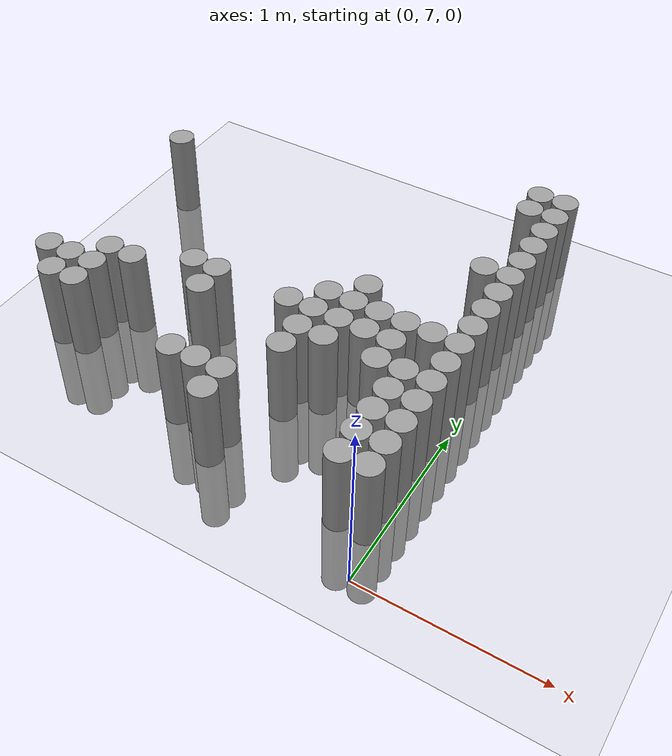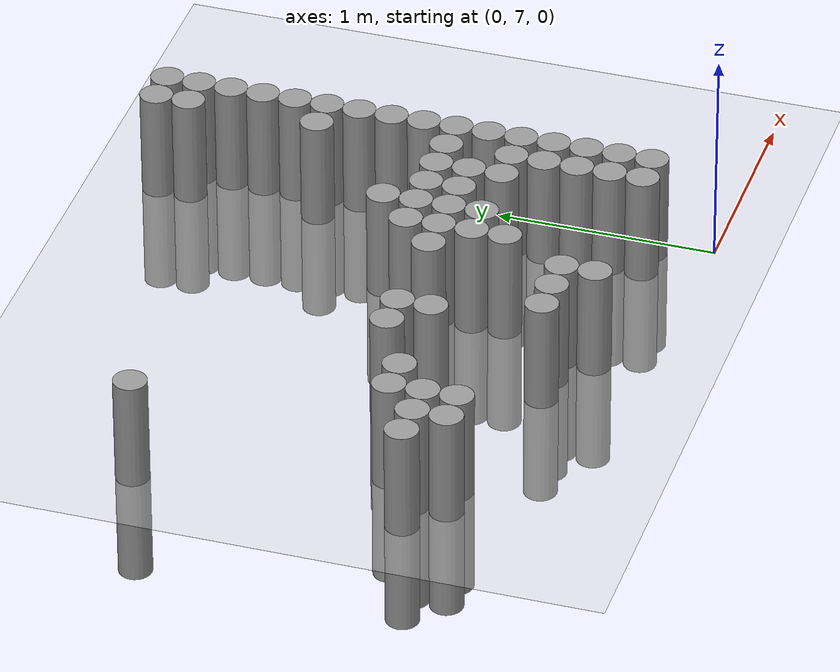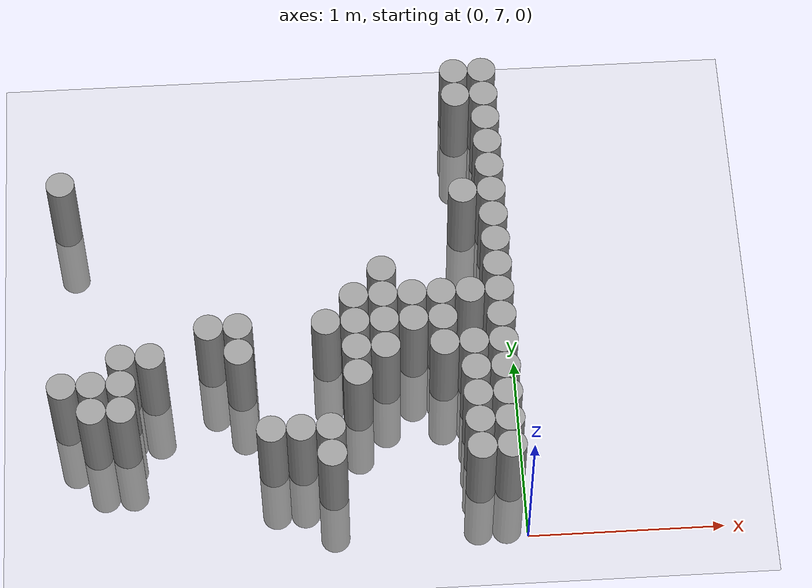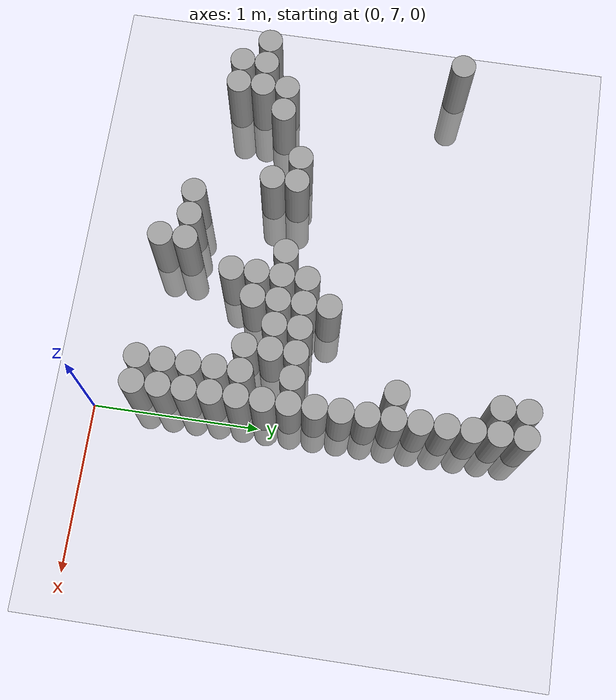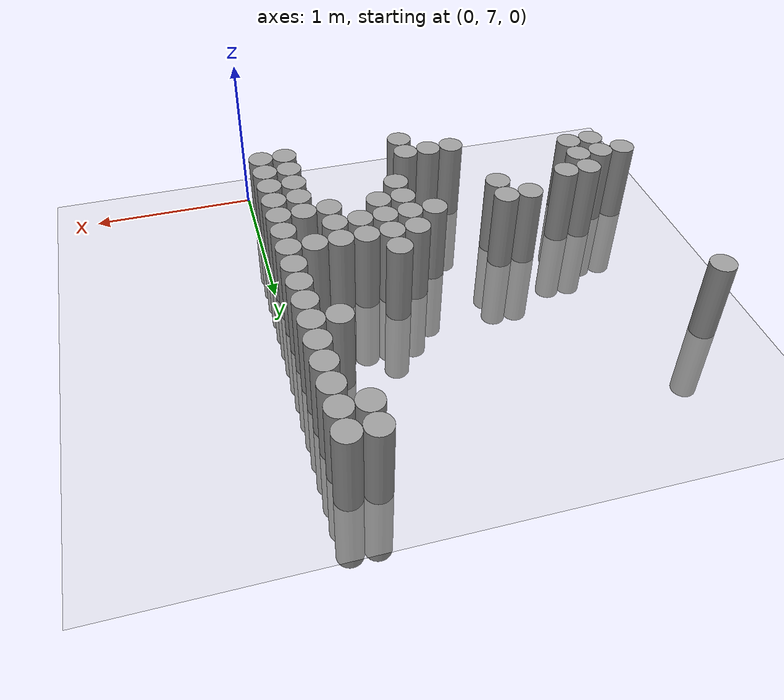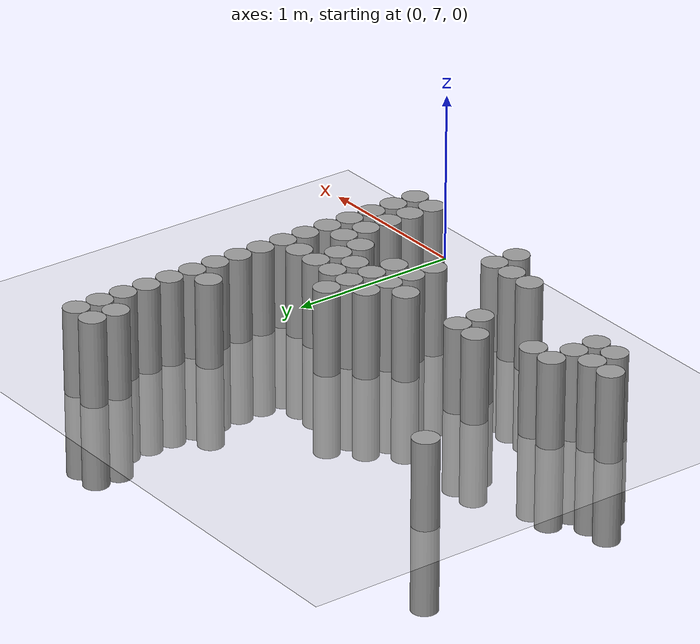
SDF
<sdf version="1.6">
 <world name="default">
  <model name="ground_plane">
   <static>1</static>
   <link name="link">
    <collision name="collision">
     <geometry><plane><normal>0 0 1</normal><size>100 100</size></plane></geometry>
     <surface><friction><ode><mu>100</mu><mu2>50</mu2></ode></friction></surface>
    </collision>
    <visual name="visual">
     <cast_shadows>0</cast_shadows>
     <geometry><plane><normal>0 0 1</normal><size>100 100</size></plane></geometry>
     <material>
      <script><uri>file://media/materials/scripts/gazebo.material</uri><name>Gazebo/Grey</name></script>
     </material>
    </visual>
   </link>
  </model>
  <model name="unit_cylinder_152">
   <pose>-2.325000 7.725000 0.000000 0.000000 0.000000 0.000000</pose>
   <link name="link">
    <inertial>
     <mass>1</mass>
     <inertia><ixx>0.145833</ixx><ixy>0</ixy><ixz>0</ixz><iyy>0.145833</iyy><iyz>0</iyz><izz>0.125</izz></inertia>
    </inertial>
    <collision name="collision">
     <geometry><cylinder><radius>0.075000</radius><length>1</length></cylinder></geometry>
    </collision>
    <visual name="visual">
     <geometry><cylinder><radius>0.075000</radius><length>1</length></cylinder></geometry>
     <material>
      <script><name>Gazebo/Grey</name><uri>file://media/materials/scripts/gazebo.material</uri></script>
     </material>
    </visual>
   </link>
  </model>
  <model name="unit_cylinder_153">
   <pose>-2.325000 8.925000 0.000000 0.000000 0.000000 0.000000</pose>
   <link name="link">
    <inertial>
     <mass>1</mass>
     <inertia><ixx>0.145833</ixx><ixy>0</ixy><ixz>0</ixz><iyy>0.145833</iyy><iyz>0</iyz><izz>0.125</izz></inertia>
    </inertial>
    <collision name="collision">
     <geometry><cylinder><radius>0.075000</radius><length>1</length></cylinder></geometry>
    </collision>
    <visual name="visual">
     <geometry><cylinder><radius>0.075000</radius><length>1</length></cylinder></geometry>
     <material>
      <script><name>Gazebo/Grey</name><uri>file://media/materials/scripts/gazebo.material</uri></script>
     </material>
    </visual>
   </link>
  </model>
  <model name="unit_cylinder_154">
   <pose>-2.175000 7.575000 0.000000 0.000000 0.000000 0.000000</pose>
   <link name="link">
    <inertial>
     <mass>1</mass>
     <inertia><ixx>0.145833</ixx><ixy>0</ixy><ixz>0</ixz><iyy>0.145833</iyy><iyz>0</iyz><izz>0.125</izz></inertia>
    </inertial>
    <collision name="collision">
     <geometry><cylinder><radius>0.075000</radius><length>1</length></cylinder></geometry>
    </collision>
    <visual name="visual">
     <geometry><cylinder><radius>0.075000</radius><length>1</length></cylinder></geometry>
     <material>
      <script><name>Gazebo/Grey</name><uri>file://media/materials/scripts/gazebo.material</uri></script>
     </material>
    </visual>
   </link>
  </model>
  <model name="unit_cylinder_155">
   <pose>-2.175000 7.725000 0.000000 0.000000 0.000000 0.000000</pose>
   <link name="link">
    <inertial>
     <mass>1</mass>
     <inertia><ixx>0.145833</ixx><ixy>0</ixy><ixz>0</ixz><iyy>0.145833</iyy><iyz>0</iyz><izz>0.125</izz></inertia>
    </inertial>
    <collision name="collision">
     <geometry><cylinder><radius>0.075000</radius><length>1</length></cylinder></geometry>
    </collision>
    <visual name="visual">
     <geometry><cylinder><radius>0.075000</radius><length>1</length></cylinder></geometry>
     <material>
      <script><name>Gazebo/Grey</name><uri>file://media/materials/scripts/gazebo.material</uri></script>
     </material>
    </visual>
   </link>
  </model>
  <model name="unit_cylinder_156">
   <pose>-2.025000 7.575000 0.000000 0.000000 0.000000 0.000000</pose>
   <link name="link">
    <inertial>
     <mass>1</mass>
     <inertia><ixx>0.145833</ixx><ixy>0</ixy><ixz>0</ixz><iyy>0.145833</iyy><iyz>0</iyz><izz>0.125</izz></inertia>
    </inertial>
    <collision name="collision">
     <geometry><cylinder><radius>0.075000</radius><length>1</length></cylinder></geometry>
    </collision>
    <visual name="visual">
     <geometry><cylinder><radius>0.075000</radius><length>1</length></cylinder></geometry>
     <material>
      <script><name>Gazebo/Grey</name><uri>file://media/materials/scripts/gazebo.material</uri></script>
     </material>
    </visual>
   </link>
  </model>
  <model name="unit_cylinder_157">
   <pose>-2.025000 7.725000 0.000000 0.000000 0.000000 0.000000</pose>
   <link name="link">
    <inertial>
     <mass>1</mass>
     <inertia><ixx>0.145833</ixx><ixy>0</ixy><ixz>0</ixz><iyy>0.145833</iyy><iyz>0</iyz><izz>0.125</izz></inertia>
    </inertial>
    <collision name="collision">
     <geometry><cylinder><radius>0.075000</radius><length>1</length></cylinder></geometry>
    </collision>
    <visual name="visual">
     <geometry><cylinder><radius>0.075000</radius><length>1</length></cylinder></geometry>
     <material>
      <script><name>Gazebo/Grey</name><uri>file://media/materials/scripts/gazebo.material</uri></script>
     </material>
    </visual>
   </link>
  </model>
  <model name="unit_cylinder_158">
   <pose>-2.025000 7.875000 0.000000 0.000000 0.000000 0.000000</pose>
   <link name="link">
    <inertial>
     <mass>1</mass>
     <inertia><ixx>0.145833</ixx><ixy>0</ixy><ixz>0</ixz><iyy>0.145833</iyy><iyz>0</iyz><izz>0.125</izz></inertia>
    </inertial>
    <collision name="collision">
     <geometry><cylinder><radius>0.075000</radius><length>1</length></cylinder></geometry>
    </collision>
    <visual name="visual">
     <geometry><cylinder><radius>0.075000</radius><length>1</length></cylinder></geometry>
     <material>
      <script><name>Gazebo/Grey</name><uri>file://media/materials/scripts/gazebo.material</uri></script>
     </material>
    </visual>
   </link>
  </model>
  <model name="unit_cylinder_161">
   <pose>-1.875000 7.875000 0.000000 0.000000 0.000000 0.000000</pose>
   <link name="link">
    <inertial>
     <mass>1</mass>
     <inertia><ixx>0.145833</ixx><ixy>0</ixy><ixz>0</ixz><iyy>0.145833</iyy><iyz>0</iyz><izz>0.125</izz></inertia>
    </inertial>
    <collision name="collision">
     <geometry><cylinder><radius>0.075000</radius><length>1</length></cylinder></geometry>
    </collision>
    <visual name="visual">
     <geometry><cylinder><radius>0.075000</radius><length>1</length></cylinder></geometry>
     <material>
      <script><name>Gazebo/Grey</name><uri>file://media/materials/scripts/gazebo.material</uri></script>
     </material>
    </visual>
   </link>
  </model>
  <model name="unit_cylinder_170">
   <pose>-1.575000 8.025000 0.000000 0.000000 0.000000 0.000000</pose>
   <link name="link">
    <inertial>
     <mass>1</mass>
     <inertia><ixx>0.145833</ixx><ixy>0</ixy><ixz>0</ixz><iyy>0.145833</iyy><iyz>0</iyz><izz>0.125</izz></inertia>
    </inertial>
    <collision name="collision">
     <geometry><cylinder><radius>0.075000</radius><length>1</length></cylinder></geometry>
    </collision>
    <visual name="visual">
     <geometry><cylinder><radius>0.075000</radius><length>1</length></cylinder></geometry>
     <material>
      <script><name>Gazebo/Grey</name><uri>file://media/materials/scripts/gazebo.material</uri></script>
     </material>
    </visual>
   </link>
  </model>
  <model name="unit_cylinder_175">
   <pose>-1.425000 7.875000 0.000000 0.000000 0.000000 0.000000</pose>
   <link name="link">
    <inertial>
     <mass>1</mass>
     <inertia><ixx>0.145833</ixx><ixy>0</ixy><ixz>0</ixz><iyy>0.145833</iyy><iyz>0</iyz><izz>0.125</izz></inertia>
    </inertial>
    <collision name="collision">
     <geometry><cylinder><radius>0.075000</radius><length>1</length></cylinder></geometry>
    </collision>
    <visual name="visual">
     <geometry><cylinder><radius>0.075000</radius><length>1</length></cylinder></geometry>
     <material>
      <script><name>Gazebo/Grey</name><uri>file://media/materials/scripts/gazebo.material</uri></script>
     </material>
    </visual>
   </link>
  </model>
  <model name="unit_cylinder_176">
   <pose>-1.425000 8.025000 0.000000 0.000000 0.000000 0.000000</pose>
   <link name="link">
    <inertial>
     <mass>1</mass>
     <inertia><ixx>0.145833</ixx><ixy>0</ixy><ixz>0</ixz><iyy>0.145833</iyy><iyz>0</iyz><izz>0.125</izz></inertia>
    </inertial>
    <collision name="collision">
     <geometry><cylinder><radius>0.075000</radius><length>1</length></cylinder></geometry>
    </collision>
    <visual name="visual">
     <geometry><cylinder><radius>0.075000</radius><length>1</length></cylinder></geometry>
     <material>
      <script><name>Gazebo/Grey</name><uri>file://media/materials/scripts/gazebo.material</uri></script>
     </material>
    </visual>
   </link>
  </model>
  <model name="unit_cylinder_183">
   <pose>-1.275000 7.425000 0.000000 0.000000 0.000000 0.000000</pose>
   <link name="link">
    <inertial>
     <mass>1</mass>
     <inertia><ixx>0.145833</ixx><ixy>0</ixy><ixz>0</ixz><iyy>0.145833</iyy><iyz>0</iyz><izz>0.125</izz></inertia>
    </inertial>
    <collision name="collision">
     <geometry><cylinder><radius>0.075000</radius><length>1</length></cylinder></geometry>
    </collision>
    <visual name="visual">
     <geometry><cylinder><radius>0.075000</radius><length>1</length></cylinder></geometry>
     <material>
      <script><name>Gazebo/Grey</name><uri>file://media/materials/scripts/gazebo.material</uri></script>
     </material>
    </visual>
   </link>
  </model>
  <model name="unit_cylinder_190">
   <pose>-1.125000 7.425000 0.000000 0.000000 0.000000 0.000000</pose>
   <link name="link">
    <inertial>
     <mass>1</mass>
     <inertia><ixx>0.145833</ixx><ixy>0</ixy><ixz>0</ixz><iyy>0.145833</iyy><iyz>0</iyz><izz>0.125</izz></inertia>
    </inertial>
    <collision name="collision">
     <geometry><cylinder><radius>0.075000</radius><length>1</length></cylinder></geometry>
    </collision>
    <visual name="visual">
     <geometry><cylinder><radius>0.075000</radius><length>1</length></cylinder></geometry>
     <material>
      <script><name>Gazebo/Grey</name><uri>file://media/materials/scripts/gazebo.material</uri></script>
     </material>
    </visual>
   </link>
  </model>
  <model name="unit_cylinder_196">
   <pose>-0.975000 7.275000 0.000000 0.000000 0.000000 0.000000</pose>
   <link name="link">
    <inertial>
     <mass>1</mass>
     <inertia><ixx>0.145833</ixx><ixy>0</ixy><ixz>0</ixz><iyy>0.145833</iyy><iyz>0</iyz><izz>0.125</izz></inertia>
    </inertial>
    <collision name="collision">
     <geometry><cylinder><radius>0.075000</radius><length>1</length></cylinder></geometry>
    </collision>
    <visual name="visual">
     <geometry><cylinder><radius>0.075000</radius><length>1</length></cylinder></geometry>
     <material>
      <script><name>Gazebo/Grey</name><uri>file://media/materials/scripts/gazebo.material</uri></script>
     </material>
    </visual>
   </link>
  </model>
  <model name="unit_cylinder_197">
   <pose>-0.975000 7.425000 0.000000 0.000000 0.000000 0.000000</pose>
   <link name="link">
    <inertial>
     <mass>1</mass>
     <inertia><ixx>0.145833</ixx><ixy>0</ixy><ixz>0</ixz><iyy>0.145833</iyy><iyz>0</iyz><izz>0.125</izz></inertia>
    </inertial>
    <collision name="collision">
     <geometry><cylinder><radius>0.075000</radius><length>1</length></cylinder></geometry>
    </collision>
    <visual name="visual">
     <geometry><cylinder><radius>0.075000</radius><length>1</length></cylinder></geometry>
     <material>
      <script><name>Gazebo/Grey</name><uri>file://media/materials/scripts/gazebo.material</uri></script>
     </material>
    </visual>
   </link>
  </model>
  <model name="unit_cylinder_198">
   <pose>-0.975000 8.025000 0.000000 0.000000 0.000000 0.000000</pose>
   <link name="link">
    <inertial>
     <mass>1</mass>
     <inertia><ixx>0.145833</ixx><ixy>0</ixy><ixz>0</ixz><iyy>0.145833</iyy><iyz>0</iyz><izz>0.125</izz></inertia>
    </inertial>
    <collision name="collision">
     <geometry><cylinder><radius>0.075000</radius><length>1</length></cylinder></geometry>
    </collision>
    <visual name="visual">
     <geometry><cylinder><radius>0.075000</radius><length>1</length></cylinder></geometry>
     <material>
      <script><name>Gazebo/Grey</name><uri>file://media/materials/scripts/gazebo.material</uri></script>
     </material>
    </visual>
   </link>
  </model>
  <model name="unit_cylinder_202">
   <pose>-0.825000 7.725000 0.000000 0.000000 0.000000 0.000000</pose>
   <link name="link">
    <inertial>
     <mass>1</mass>
     <inertia><ixx>0.145833</ixx><ixy>0</ixy><ixz>0</ixz><iyy>0.145833</iyy><iyz>0</iyz><izz>0.125</izz></inertia>
    </inertial>
    <collision name="collision">
     <geometry><cylinder><radius>0.075000</radius><length>1</length></cylinder></geometry>
    </collision>
    <visual name="visual">
     <geometry><cylinder><radius>0.075000</radius><length>1</length></cylinder></geometry>
     <material>
      <script><name>Gazebo/Grey</name><uri>file://media/materials/scripts/gazebo.material</uri></script>
     </material>
    </visual>
   </link>
  </model>
  <model name="unit_cylinder_203">
   <pose>-0.825000 7.875000 0.000000 0.000000 0.000000 0.000000</pose>
   <link name="link">
    <inertial>
     <mass>1</mass>
     <inertia><ixx>0.145833</ixx><ixy>0</ixy><ixz>0</ixz><iyy>0.145833</iyy><iyz>0</iyz><izz>0.125</izz></inertia>
    </inertial>
    <collision name="collision">
     <geometry><cylinder><radius>0.075000</radius><length>1</length></cylinder></geometry>
    </collision>
    <visual name="visual">
     <geometry><cylinder><radius>0.075000</radius><length>1</length></cylinder></geometry>
     <material>
      <script><name>Gazebo/Grey</name><uri>file://media/materials/scripts/gazebo.material</uri></script>
     </material>
    </visual>
   </link>
  </model>
  <model name="unit_cylinder_204">
   <pose>-0.825000 8.025000 0.000000 0.000000 0.000000 0.000000</pose>
   <link name="link">
    <inertial>
     <mass>1</mass>
     <inertia><ixx>0.145833</ixx><ixy>0</ixy><ixz>0</ixz><iyy>0.145833</iyy><iyz>0</iyz><izz>0.125</izz></inertia>
    </inertial>
    <collision name="collision">
     <geometry><cylinder><radius>0.075000</radius><length>1</length></cylinder></geometry>
    </collision>
    <visual name="visual">
     <geometry><cylinder><radius>0.075000</radius><length>1</length></cylinder></geometry>
     <material>
      <script><name>Gazebo/Grey</name><uri>file://media/materials/scripts/gazebo.material</uri></script>
     </material>
    </visual>
   </link>
  </model>
  <model name="unit_cylinder_205">
   <pose>-0.825000 8.175000 0.000000 0.000000 0.000000 0.000000</pose>
   <link name="link">
    <inertial>
     <mass>1</mass>
     <inertia><ixx>0.145833</ixx><ixy>0</ixy><ixz>0</ixz><iyy>0.145833</iyy><iyz>0</iyz><izz>0.125</izz></inertia>
    </inertial>
    <collision name="collision">
     <geometry><cylinder><radius>0.075000</radius><length>1</length></cylinder></geometry>
    </collision>
    <visual name="visual">
     <geometry><cylinder><radius>0.075000</radius><length>1</length></cylinder></geometry>
     <material>
      <script><name>Gazebo/Grey</name><uri>file://media/materials/scripts/gazebo.material</uri></script>
     </material>
    </visual>
   </link>
  </model>
  <model name="unit_cylinder_209">
   <pose>-0.675000 7.875000 0.000000 0.000000 0.000000 0.000000</pose>
   <link name="link">
    <inertial>
     <mass>1</mass>
     <inertia><ixx>0.145833</ixx><ixy>0</ixy><ixz>0</ixz><iyy>0.145833</iyy><iyz>0</iyz><izz>0.125</izz></inertia>
    </inertial>
    <collision name="collision">
     <geometry><cylinder><radius>0.075000</radius><length>1</length></cylinder></geometry>
    </collision>
    <visual name="visual">
     <geometry><cylinder><radius>0.075000</radius><length>1</length></cylinder></geometry>
     <material>
      <script><name>Gazebo/Grey</name><uri>file://media/materials/scripts/gazebo.material</uri></script>
     </material>
    </visual>
   </link>
  </model>
  <model name="unit_cylinder_210">
   <pose>-0.675000 8.025000 0.000000 0.000000 0.000000 0.000000</pose>
   <link name="link">
    <inertial>
     <mass>1</mass>
     <inertia><ixx>0.145833</ixx><ixy>0</ixy><ixz>0</ixz><iyy>0.145833</iyy><iyz>0</iyz><izz>0.125</izz></inertia>
    </inertial>
    <collision name="collision">
     <geometry><cylinder><radius>0.075000</radius><length>1</length></cylinder></geometry>
    </collision>
    <visual name="visual">
     <geometry><cylinder><radius>0.075000</radius><length>1</length></cylinder></geometry>
     <material>
      <script><name>Gazebo/Grey</name><uri>file://media/materials/scripts/gazebo.material</uri></script>
     </material>
    </visual>
   </link>
  </model>
  <model name="unit_cylinder_211">
   <pose>-0.675000 8.175000 0.000000 0.000000 0.000000 0.000000</pose>
   <link name="link">
    <inertial>
     <mass>1</mass>
     <inertia><ixx>0.145833</ixx><ixy>0</ixy><ixz>0</ixz><iyy>0.145833</iyy><iyz>0</iyz><izz>0.125</izz></inertia>
    </inertial>
    <collision name="collision">
     <geometry><cylinder><radius>0.075000</radius><length>1</length></cylinder></geometry>
    </collision>
    <visual name="visual">
     <geometry><cylinder><radius>0.075000</radius><length>1</length></cylinder></geometry>
     <material>
      <script><name>Gazebo/Grey</name><uri>file://media/materials/scripts/gazebo.material</uri></script>
     </material>
    </visual>
   </link>
  </model>
  <model name="unit_cylinder_212">
   <pose>-0.675000 8.325000 0.000000 0.000000 0.000000 0.000000</pose>
   <link name="link">
    <inertial>
     <mass>1</mass>
     <inertia><ixx>0.145833</ixx><ixy>0</ixy><ixz>0</ixz><iyy>0.145833</iyy><iyz>0</iyz><izz>0.125</izz></inertia>
    </inertial>
    <collision name="collision">
     <geometry><cylinder><radius>0.075000</radius><length>1</length></cylinder></geometry>
    </collision>
    <visual name="visual">
     <geometry><cylinder><radius>0.075000</radius><length>1</length></cylinder></geometry>
     <material>
      <script><name>Gazebo/Grey</name><uri>file://media/materials/scripts/gazebo.material</uri></script>
     </material>
    </visual>
   </link>
  </model>
  <model name="unit_cylinder_215">
   <pose>-0.525000 8.025000 0.000000 0.000000 0.000000 0.000000</pose>
   <link name="link">
    <inertial>
     <mass>1</mass>
     <inertia><ixx>0.145833</ixx><ixy>0</ixy><ixz>0</ixz><iyy>0.145833</iyy><iyz>0</iyz><izz>0.125</izz></inertia>
    </inertial>
    <collision name="collision">
     <geometry><cylinder><radius>0.075000</radius><length>1</length></cylinder></geometry>
    </collision>
    <visual name="visual">
     <geometry><cylinder><radius>0.075000</radius><length>1</length></cylinder></geometry>
     <material>
      <script><name>Gazebo/Grey</name><uri>file://media/materials/scripts/gazebo.material</uri></script>
     </material>
    </visual>
   </link>
  </model>
  <model name="unit_cylinder_216">
   <pose>-0.525000 8.175000 0.000000 0.000000 0.000000 0.000000</pose>
   <link name="link">
    <inertial>
     <mass>1</mass>
     <inertia><ixx>0.145833</ixx><ixy>0</ixy><ixz>0</ixz><iyy>0.145833</iyy><iyz>0</iyz><izz>0.125</izz></inertia>
    </inertial>
    <collision name="collision">
     <geometry><cylinder><radius>0.075000</radius><length>1</length></cylinder></geometry>
    </collision>
    <visual name="visual">
     <geometry><cylinder><radius>0.075000</radius><length>1</length></cylinder></geometry>
     <material>
      <script><name>Gazebo/Grey</name><uri>file://media/materials/scripts/gazebo.material</uri></script>
     </material>
    </visual>
   </link>
  </model>
  <model name="unit_cylinder_220">
   <pose>-0.375000 7.875000 0.000000 0.000000 0.000000 0.000000</pose>
   <link name="link">
    <inertial>
     <mass>1</mass>
     <inertia><ixx>0.145833</ixx><ixy>0</ixy><ixz>0</ixz><iyy>0.145833</iyy><iyz>0</iyz><izz>0.125</izz></inertia>
    </inertial>
    <collision name="collision">
     <geometry><cylinder><radius>0.075000</radius><length>1</length></cylinder></geometry>
    </collision>
    <visual name="visual">
     <geometry><cylinder><radius>0.075000</radius><length>1</length></cylinder></geometry>
     <material>
      <script><name>Gazebo/Grey</name><uri>file://media/materials/scripts/gazebo.material</uri></script>
     </material>
    </visual>
   </link>
  </model>
  <model name="unit_cylinder_221">
   <pose>-0.375000 8.025000 0.000000 0.000000 0.000000 0.000000</pose>
   <link name="link">
    <inertial>
     <mass>1</mass>
     <inertia><ixx>0.145833</ixx><ixy>0</ixy><ixz>0</ixz><iyy>0.145833</iyy><iyz>0</iyz><izz>0.125</izz></inertia>
    </inertial>
    <collision name="collision">
     <geometry><cylinder><radius>0.075000</radius><length>1</length></cylinder></geometry>
    </collision>
    <visual name="visual">
     <geometry><cylinder><radius>0.075000</radius><length>1</length></cylinder></geometry>
     <material>
      <script><name>Gazebo/Grey</name><uri>file://media/materials/scripts/gazebo.material</uri></script>
     </material>
    </visual>
   </link>
  </model>
  <model name="unit_cylinder_222">
   <pose>-0.375000 8.175000 0.000000 0.000000 0.000000 0.000000</pose>
   <link name="link">
    <inertial>
     <mass>1</mass>
     <inertia><ixx>0.145833</ixx><ixy>0</ixy><ixz>0</ixz><iyy>0.145833</iyy><iyz>0</iyz><izz>0.125</izz></inertia>
    </inertial>
    <collision name="collision">
     <geometry><cylinder><radius>0.075000</radius><length>1</length></cylinder></geometry>
    </collision>
    <visual name="visual">
     <geometry><cylinder><radius>0.075000</radius><length>1</length></cylinder></geometry>
     <material>
      <script><name>Gazebo/Grey</name><uri>file://media/materials/scripts/gazebo.material</uri></script>
     </material>
    </visual>
   </link>
  </model>
  <model name="unit_cylinder_230">
   <pose>-0.225000 7.275000 0.000000 0.000000 0.000000 0.000000</pose>
   <link name="link">
    <inertial>
     <mass>1</mass>
     <inertia><ixx>0.145833</ixx><ixy>0</ixy><ixz>0</ixz><iyy>0.145833</iyy><iyz>0</iyz><izz>0.125</izz></inertia>
    </inertial>
    <collision name="collision">
     <geometry><cylinder><radius>0.075000</radius><length>1</length></cylinder></geometry>
    </collision>
    <visual name="visual">
     <geometry><cylinder><radius>0.075000</radius><length>1</length></cylinder></geometry>
     <material>
      <script><name>Gazebo/Grey</name><uri>file://media/materials/scripts/gazebo.material</uri></script>
     </material>
    </visual>
   </link>
  </model>
  <model name="unit_cylinder_231">
   <pose>-0.225000 7.425000 0.000000 0.000000 0.000000 0.000000</pose>
   <link name="link">
    <inertial>
     <mass>1</mass>
     <inertia><ixx>0.145833</ixx><ixy>0</ixy><ixz>0</ixz><iyy>0.145833</iyy><iyz>0</iyz><izz>0.125</izz></inertia>
    </inertial>
    <collision name="collision">
     <geometry><cylinder><radius>0.075000</radius><length>1</length></cylinder></geometry>
    </collision>
    <visual name="visual">
     <geometry><cylinder><radius>0.075000</radius><length>1</length></cylinder></geometry>
     <material>
      <script><name>Gazebo/Grey</name><uri>file://media/materials/scripts/gazebo.material</uri></script>
     </material>
    </visual>
   </link>
  </model>
  <model name="unit_cylinder_232">
   <pose>-0.225000 7.575000 0.000000 0.000000 0.000000 0.000000</pose>
   <link name="link">
    <inertial>
     <mass>1</mass>
     <inertia><ixx>0.145833</ixx><ixy>0</ixy><ixz>0</ixz><iyy>0.145833</iyy><iyz>0</iyz><izz>0.125</izz></inertia>
    </inertial>
    <collision name="collision">
     <geometry><cylinder><radius>0.075000</radius><length>1</length></cylinder></geometry>
    </collision>
    <visual name="visual">
     <geometry><cylinder><radius>0.075000</radius><length>1</length></cylinder></geometry>
     <material>
      <script><name>Gazebo/Grey</name><uri>file://media/materials/scripts/gazebo.material</uri></script>
     </material>
    </visual>
   </link>
  </model>
  <model name="unit_cylinder_233">
   <pose>-0.225000 7.725000 0.000000 0.000000 0.000000 0.000000</pose>
   <link name="link">
    <inertial>
     <mass>1</mass>
     <inertia><ixx>0.145833</ixx><ixy>0</ixy><ixz>0</ixz><iyy>0.145833</iyy><iyz>0</iyz><izz>0.125</izz></inertia>
    </inertial>
    <collision name="collision">
     <geometry><cylinder><radius>0.075000</radius><length>1</length></cylinder></geometry>
    </collision>
    <visual name="visual">
     <geometry><cylinder><radius>0.075000</radius><length>1</length></cylinder></geometry>
     <material>
      <script><name>Gazebo/Grey</name><uri>file://media/materials/scripts/gazebo.material</uri></script>
     </material>
    </visual>
   </link>
  </model>
  <model name="unit_cylinder_234">
   <pose>-0.225000 7.875000 0.000000 0.000000 0.000000 0.000000</pose>
   <link name="link">
    <inertial>
     <mass>1</mass>
     <inertia><ixx>0.145833</ixx><ixy>0</ixy><ixz>0</ixz><iyy>0.145833</iyy><iyz>0</iyz><izz>0.125</izz></inertia>
    </inertial>
    <collision name="collision">
     <geometry><cylinder><radius>0.075000</radius><length>1</length></cylinder></geometry>
    </collision>
    <visual name="visual">
     <geometry><cylinder><radius>0.075000</radius><length>1</length></cylinder></geometry>
     <material>
      <script><name>Gazebo/Grey</name><uri>file://media/materials/scripts/gazebo.material</uri></script>
     </material>
    </visual>
   </link>
  </model>
  <model name="unit_cylinder_235">
   <pose>-0.225000 8.175000 0.000000 0.000000 0.000000 0.000000</pose>
   <link name="link">
    <inertial>
     <mass>1</mass>
     <inertia><ixx>0.145833</ixx><ixy>0</ixy><ixz>0</ixz><iyy>0.145833</iyy><iyz>0</iyz><izz>0.125</izz></inertia>
    </inertial>
    <collision name="collision">
     <geometry><cylinder><radius>0.075000</radius><length>1</length></cylinder></geometry>
    </collision>
    <visual name="visual">
     <geometry><cylinder><radius>0.075000</radius><length>1</length></cylinder></geometry>
     <material>
      <script><name>Gazebo/Grey</name><uri>file://media/materials/scripts/gazebo.material</uri></script>
     </material>
    </visual>
   </link>
  </model>
  <model name="unit_cylinder_236">
   <pose>-0.225000 8.775000 0.000000 0.000000 0.000000 0.000000</pose>
   <link name="link">
    <inertial>
     <mass>1</mass>
     <inertia><ixx>0.145833</ixx><ixy>0</ixy><ixz>0</ixz><iyy>0.145833</iyy><iyz>0</iyz><izz>0.125</izz></inertia>
    </inertial>
    <collision name="collision">
     <geometry><cylinder><radius>0.075000</radius><length>1</length></cylinder></geometry>
    </collision>
    <visual name="visual">
     <geometry><cylinder><radius>0.075000</radius><length>1</length></cylinder></geometry>
     <material>
      <script><name>Gazebo/Grey</name><uri>file://media/materials/scripts/gazebo.material</uri></script>
     </material>
    </visual>
   </link>
  </model>
  <model name="unit_cylinder_237">
   <pose>-0.225000 9.375000 0.000000 0.000000 0.000000 0.000000</pose>
   <link name="link">
    <inertial>
     <mass>1</mass>
     <inertia><ixx>0.145833</ixx><ixy>0</ixy><ixz>0</ixz><iyy>0.145833</iyy><iyz>0</iyz><izz>0.125</izz></inertia>
    </inertial>
    <collision name="collision">
     <geometry><cylinder><radius>0.075000</radius><length>1</length></cylinder></geometry>
    </collision>
    <visual name="visual">
     <geometry><cylinder><radius>0.075000</radius><length>1</length></cylinder></geometry>
     <material>
      <script><name>Gazebo/Grey</name><uri>file://media/materials/scripts/gazebo.material</uri></script>
     </material>
    </visual>
   </link>
  </model>
  <model name="unit_cylinder_238">
   <pose>-0.225000 9.525000 0.000000 0.000000 0.000000 0.000000</pose>
   <link name="link">
    <inertial>
     <mass>1</mass>
     <inertia><ixx>0.145833</ixx><ixy>0</ixy><ixz>0</ixz><iyy>0.145833</iyy><iyz>0</iyz><izz>0.125</izz></inertia>
    </inertial>
    <collision name="collision">
     <geometry><cylinder><radius>0.075000</radius><length>1</length></cylinder></geometry>
    </collision>
    <visual name="visual">
     <geometry><cylinder><radius>0.075000</radius><length>1</length></cylinder></geometry>
     <material>
      <script><name>Gazebo/Grey</name><uri>file://media/materials/scripts/gazebo.material</uri></script>
     </material>
    </visual>
   </link>
  </model>
  <model name="unit_cylinder_253">
   <pose>-0.075000 7.275000 0.000000 0.000000 0.000000 0.000000</pose>
   <link name="link">
    <inertial>
     <mass>1</mass>
     <inertia><ixx>0.145833</ixx><ixy>0</ixy><ixz>0</ixz><iyy>0.145833</iyy><iyz>0</iyz><izz>0.125</izz></inertia>
    </inertial>
    <collision name="collision">
     <geometry><cylinder><radius>0.075000</radius><length>1</length></cylinder></geometry>
    </collision>
    <visual name="visual">
     <geometry><cylinder><radius>0.075000</radius><length>1</length></cylinder></geometry>
     <material>
      <script><name>Gazebo/Grey</name><uri>file://media/materials/scripts/gazebo.material</uri></script>
     </material>
    </visual>
   </link>
  </model>
  <model name="unit_cylinder_254">
   <pose>-0.075000 7.425000 0.000000 0.000000 0.000000 0.000000</pose>
   <link name="link">
    <inertial>
     <mass>1</mass>
     <inertia><ixx>0.145833</ixx><ixy>0</ixy><ixz>0</ixz><iyy>0.145833</iyy><iyz>0</iyz><izz>0.125</izz></inertia>
    </inertial>
    <collision name="collision">
     <geometry><cylinder><radius>0.075000</radius><length>1</length></cylinder></geometry>
    </collision>
    <visual name="visual">
     <geometry><cylinder><radius>0.075000</radius><length>1</length></cylinder></geometry>
     <material>
      <script><name>Gazebo/Grey</name><uri>file://media/materials/scripts/gazebo.material</uri></script>
     </material>
    </visual>
   </link>
  </model>
  <model name="unit_cylinder_255">
   <pose>-0.075000 7.575000 0.000000 0.000000 0.000000 0.000000</pose>
   <link name="link">
    <inertial>
     <mass>1</mass>
     <inertia><ixx>0.145833</ixx><ixy>0</ixy><ixz>0</ixz><iyy>0.145833</iyy><iyz>0</iyz><izz>0.125</izz></inertia>
    </inertial>
    <collision name="collision">
     <geometry><cylinder><radius>0.075000</radius><length>1</length></cylinder></geometry>
    </collision>
    <visual name="visual">
     <geometry><cylinder><radius>0.075000</radius><length>1</length></cylinder></geometry>
     <material>
      <script><name>Gazebo/Grey</name><uri>file://media/materials/scripts/gazebo.material</uri></script>
     </material>
    </visual>
   </link>
  </model>
  <model name="unit_cylinder_256">
   <pose>-0.075000 7.725000 0.000000 0.000000 0.000000 0.000000</pose>
   <link name="link">
    <inertial>
     <mass>1</mass>
     <inertia><ixx>0.145833</ixx><ixy>0</ixy><ixz>0</ixz><iyy>0.145833</iyy><iyz>0</iyz><izz>0.125</izz></inertia>
    </inertial>
    <collision name="collision">
     <geometry><cylinder><radius>0.075000</radius><length>1</length></cylinder></geometry>
    </collision>
    <visual name="visual">
     <geometry><cylinder><radius>0.075000</radius><length>1</length></cylinder></geometry>
     <material>
      <script><name>Gazebo/Grey</name><uri>file://media/materials/scripts/gazebo.material</uri></script>
     </material>
    </visual>
   </link>
  </model>
  <model name="unit_cylinder_257">
   <pose>-0.075000 7.875000 0.000000 0.000000 0.000000 0.000000</pose>
   <link name="link">
    <inertial>
     <mass>1</mass>
     <inertia><ixx>0.145833</ixx><ixy>0</ixy><ixz>0</ixz><iyy>0.145833</iyy><iyz>0</iyz><izz>0.125</izz></inertia>
    </inertial>
    <collision name="collision">
     <geometry><cylinder><radius>0.075000</radius><length>1</length></cylinder></geometry>
    </collision>
    <visual name="visual">
     <geometry><cylinder><radius>0.075000</radius><length>1</length></cylinder></geometry>
     <material>
      <script><name>Gazebo/Grey</name><uri>file://media/materials/scripts/gazebo.material</uri></script>
     </material>
    </visual>
   </link>
  </model>
  <model name="unit_cylinder_258">
   <pose>-0.075000 8.025000 0.000000 0.000000 0.000000 0.000000</pose>
   <link name="link">
    <inertial>
     <mass>1</mass>
     <inertia><ixx>0.145833</ixx><ixy>0</ixy><ixz>0</ixz><iyy>0.145833</iyy><iyz>0</iyz><izz>0.125</izz></inertia>
    </inertial>
    <collision name="collision">
     <geometry><cylinder><radius>0.075000</radius><length>1</length></cylinder></geometry>
    </collision>
    <visual name="visual">
     <geometry><cylinder><radius>0.075000</radius><length>1</length></cylinder></geometry>
     <material>
      <script><name>Gazebo/Grey</name><uri>file://media/materials/scripts/gazebo.material</uri></script>
     </material>
    </visual>
   </link>
  </model>
  <model name="unit_cylinder_259">
   <pose>-0.075000 8.175000 0.000000 0.000000 0.000000 0.000000</pose>
   <link name="link">
    <inertial>
     <mass>1</mass>
     <inertia><ixx>0.145833</ixx><ixy>0</ixy><ixz>0</ixz><iyy>0.145833</iyy><iyz>0</iyz><izz>0.125</izz></inertia>
    </inertial>
    <collision name="collision">
     <geometry><cylinder><radius>0.075000</radius><length>1</length></cylinder></geometry>
    </collision>
    <visual name="visual">
     <geometry><cylinder><radius>0.075000</radius><length>1</length></cylinder></geometry>
     <material>
      <script><name>Gazebo/Grey</name><uri>file://media/materials/scripts/gazebo.material</uri></script>
     </material>
    </visual>
   </link>
  </model>
  <model name="unit_cylinder_260">
   <pose>-0.075000 8.325000 0.000000 0.000000 0.000000 0.000000</pose>
   <link name="link">
    <inertial>
     <mass>1</mass>
     <inertia><ixx>0.145833</ixx><ixy>0</ixy><ixz>0</ixz><iyy>0.145833</iyy><iyz>0</iyz><izz>0.125</izz></inertia>
    </inertial>
    <collision name="collision">
     <geometry><cylinder><radius>0.075000</radius><length>1</length></cylinder></geometry>
    </collision>
    <visual name="visual">
     <geometry><cylinder><radius>0.075000</radius><length>1</length></cylinder></geometry>
     <material>
      <script><name>Gazebo/Grey</name><uri>file://media/materials/scripts/gazebo.material</uri></script>
     </material>
    </visual>
   </link>
  </model>
  <model name="unit_cylinder_261">
   <pose>-0.075000 8.475000 0.000000 0.000000 0.000000 0.000000</pose>
   <link name="link">
    <inertial>
     <mass>1</mass>
     <inertia><ixx>0.145833</ixx><ixy>0</ixy><ixz>0</ixz><iyy>0.145833</iyy><iyz>0</iyz><izz>0.125</izz></inertia>
    </inertial>
    <collision name="collision">
     <geometry><cylinder><radius>0.075000</radius><length>1</length></cylinder></geometry>
    </collision>
    <visual name="visual">
     <geometry><cylinder><radius>0.075000</radius><length>1</length></cylinder></geometry>
     <material>
      <script><name>Gazebo/Grey</name><uri>file://media/materials/scripts/gazebo.material</uri></script>
     </material>
    </visual>
   </link>
  </model>
  <model name="unit_cylinder_262">
   <pose>-0.075000 8.625000 0.000000 0.000000 0.000000 0.000000</pose>
   <link name="link">
    <inertial>
     <mass>1</mass>
     <inertia><ixx>0.145833</ixx><ixy>0</ixy><ixz>0</ixz><iyy>0.145833</iyy><iyz>0</iyz><izz>0.125</izz></inertia>
    </inertial>
    <collision name="collision">
     <geometry><cylinder><radius>0.075000</radius><length>1</length></cylinder></geometry>
    </collision>
    <visual name="visual">
     <geometry><cylinder><radius>0.075000</radius><length>1</length></cylinder></geometry>
     <material>
      <script><name>Gazebo/Grey</name><uri>file://media/materials/scripts/gazebo.material</uri></script>
     </material>
    </visual>
   </link>
  </model>
  <model name="unit_cylinder_263">
   <pose>-0.075000 8.775000 0.000000 0.000000 0.000000 0.000000</pose>
   <link name="link">
    <inertial>
     <mass>1</mass>
     <inertia><ixx>0.145833</ixx><ixy>0</ixy><ixz>0</ixz><iyy>0.145833</iyy><iyz>0</iyz><izz>0.125</izz></inertia>
    </inertial>
    <collision name="collision">
     <geometry><cylinder><radius>0.075000</radius><length>1</length></cylinder></geometry>
    </collision>
    <visual name="visual">
     <geometry><cylinder><radius>0.075000</radius><length>1</length></cylinder></geometry>
     <material>
      <script><name>Gazebo/Grey</name><uri>file://media/materials/scripts/gazebo.material</uri></script>
     </material>
    </visual>
   </link>
  </model>
  <model name="unit_cylinder_264">
   <pose>-0.075000 8.925000 0.000000 0.000000 0.000000 0.000000</pose>
   <link name="link">
    <inertial>
     <mass>1</mass>
     <inertia><ixx>0.145833</ixx><ixy>0</ixy><ixz>0</ixz><iyy>0.145833</iyy><iyz>0</iyz><izz>0.125</izz></inertia>
    </inertial>
    <collision name="collision">
     <geometry><cylinder><radius>0.075000</radius><length>1</length></cylinder></geometry>
    </collision>
    <visual name="visual">
     <geometry><cylinder><radius>0.075000</radius><length>1</length></cylinder></geometry>
     <material>
      <script><name>Gazebo/Grey</name><uri>file://media/materials/scripts/gazebo.material</uri></script>
     </material>
    </visual>
   </link>
  </model>
  <model name="unit_cylinder_265">
   <pose>-0.075000 9.075000 0.000000 0.000000 0.000000 0.000000</pose>
   <link name="link">
    <inertial>
     <mass>1</mass>
     <inertia><ixx>0.145833</ixx><ixy>0</ixy><ixz>0</ixz><iyy>0.145833</iyy><iyz>0</iyz><izz>0.125</izz></inertia>
    </inertial>
    <collision name="collision">
     <geometry><cylinder><radius>0.075000</radius><length>1</length></cylinder></geometry>
    </collision>
    <visual name="visual">
     <geometry><cylinder><radius>0.075000</radius><length>1</length></cylinder></geometry>
     <material>
      <script><name>Gazebo/Grey</name><uri>file://media/materials/scripts/gazebo.material</uri></script>
     </material>
    </visual>
   </link>
  </model>
  <model name="unit_cylinder_266">
   <pose>-0.075000 9.225000 0.000000 0.000000 0.000000 0.000000</pose>
   <link name="link">
    <inertial>
     <mass>1</mass>
     <inertia><ixx>0.145833</ixx><ixy>0</ixy><ixz>0</ixz><iyy>0.145833</iyy><iyz>0</iyz><izz>0.125</izz></inertia>
    </inertial>
    <collision name="collision">
     <geometry><cylinder><radius>0.075000</radius><length>1</length></cylinder></geometry>
    </collision>
    <visual name="visual">
     <geometry><cylinder><radius>0.075000</radius><length>1</length></cylinder></geometry>
     <material>
      <script><name>Gazebo/Grey</name><uri>file://media/materials/scripts/gazebo.material</uri></script>
     </material>
    </visual>
   </link>
  </model>
  <model name="unit_cylinder_267">
   <pose>-0.075000 9.375000 0.000000 0.000000 0.000000 0.000000</pose>
   <link name="link">
    <inertial>
     <mass>1</mass>
     <inertia><ixx>0.145833</ixx><ixy>0</ixy><ixz>0</ixz><iyy>0.145833</iyy><iyz>0</iyz><izz>0.125</izz></inertia>
    </inertial>
    <collision name="collision">
     <geometry><cylinder><radius>0.075000</radius><length>1</length></cylinder></geometry>
    </collision>
    <visual name="visual">
     <geometry><cylinder><radius>0.075000</radius><length>1</length></cylinder></geometry>
     <material>
      <script><name>Gazebo/Grey</name><uri>file://media/materials/scripts/gazebo.material</uri></script>
     </material>
    </visual>
   </link>
  </model>
  <model name="unit_cylinder_268">
   <pose>-0.075000 9.525000 0.000000 0.000000 0.000000 0.000000</pose>
   <link name="link">
    <inertial>
     <mass>1</mass>
     <inertia><ixx>0.145833</ixx><ixy>0</ixy><ixz>0</ixz><iyy>0.145833</iyy><iyz>0</iyz><izz>0.125</izz></inertia>
    </inertial>
    <collision name="collision">
     <geometry><cylinder><radius>0.075000</radius><length>1</length></cylinder></geometry>
    </collision>
    <visual name="visual">
     <geometry><cylinder><radius>0.075000</radius><length>1</length></cylinder></geometry>
     <material>
      <script><name>Gazebo/Grey</name><uri>file://media/materials/scripts/gazebo.material</uri></script>
     </material>
    </visual>
   </link>
  </model>
 </world>
</sdf>
